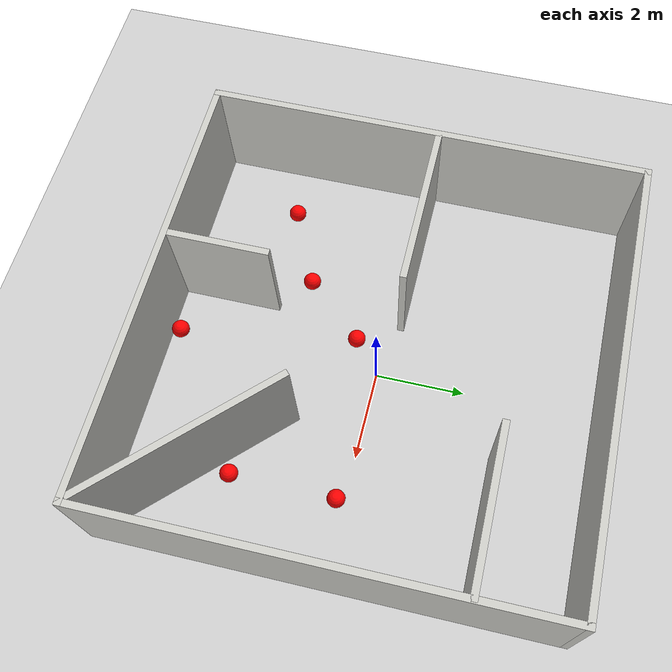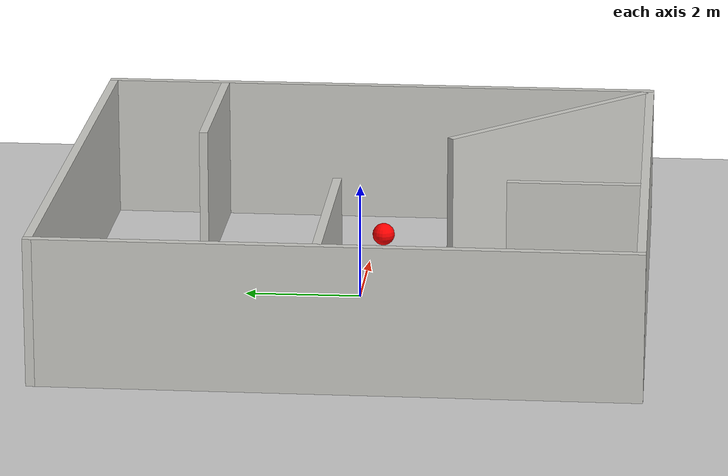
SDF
<sdf version="1.6">
 <world name="default">
  <model name="ground_plane">
   <static>1</static>
   <link name="link">
    <collision name="collision">
     <geometry><plane><normal>0 0 1</normal><size>100 100</size></plane></geometry>
     <surface><friction><ode><mu>100</mu><mu2>50</mu2></ode></friction></surface>
    </collision>
    <visual name="visual">
     <cast_shadows>0</cast_shadows>
     <geometry><plane><normal>0 0 1</normal><size>100 100</size></plane></geometry>
     <material>
      <script><uri>file://media/materials/scripts/gazebo.material</uri><name>Gazebo/Grey</name></script>
     </material>
    </visual>
   </link>
  </model>
  <model name="redball_0">
   <link name="link">
    <pose>0 0 0.2 0 -0 0</pose>
    <inertial>
     <mass>1</mass>
     <inertia><ixx>0.1</ixx><ixy>0</ixy><ixz>0</ixz><iyy>0.1</iyy><iyz>0</iyz><izz>0.1</izz></inertia>
    </inertial>
    <visual name="visual">
     <geometry><sphere><radius>0.2</radius></sphere></geometry>
     <material>
      <script><name>Gazebo/Grey</name><uri>file://media/materials/scripts/gazebo.material</uri></script>
      <ambient>1 0 0 1</ambient>
      <diffuse>1 0 0 1</diffuse>
      <specular>1 0 0 1</specular>
      <emissive>0 0 0 1</emissive>
      <shader type="vertex"><normal_map>__default__</normal_map></shader>
     </material>
    </visual>
    <collision name="collision">
     <geometry><sphere><radius>0.2</radius></sphere></geometry>
     <surface>
      <friction>
       <ode><mu>1</mu><mu2>1</mu2><fdir1>0 0 0</fdir1><slip1>0</slip1><slip2>0</slip2></ode>
       <torsional>
        <coefficient>1</coefficient>
        <patch_radius>0</patch_radius>
        <surface_radius>0</surface_radius>
        <use_patch_radius>1</use_patch_radius>
        <ode><slip>0</slip></ode>
       </torsional>
      </friction>
      <bounce><restitution_coefficient>0</restitution_coefficient><threshold>1e+06</threshold></bounce>
      <contact>
       <collide_without_contact>0</collide_without_contact>
       <collide_without_contact_bitmask>1</collide_without_contact_bitmask>
       <collide_bitmask>1</collide_bitmask>
       <ode>
        <soft_cfm>0</soft_cfm>
        <soft_erp>0.2</soft_erp>
        <kp>1e+13</kp>
        <kd>1</kd>
        <max_vel>0.01</max_vel>
        <min_depth>0</min_depth>
       </ode>
       <bullet>
        <split_impulse>1</split_impulse>
        <split_impulse_penetration_threshold>-0.01</split_impulse_penetration_threshold>
        <soft_cfm>0</soft_cfm>
        <soft_erp>0.2</soft_erp>
        <kp>1e+13</kp>
        <kd>1</kd>
       </bullet>
      </contact>
     </surface>
    </collision>
   </link>
   <static>0</static>
   <pose>-0.044672 -4.61825 7.4e-05 -0.02714 0 0</pose>
  </model>
  <model name="redball_3">
   <link name="link">
    <pose>0 0 0.2 0 -0 0</pose>
    <inertial>
     <mass>1</mass>
     <inertia><ixx>0.1</ixx><ixy>0</ixy><ixz>0</ixz><iyy>0.1</iyy><iyz>0</iyz><izz>0.1</izz></inertia>
    </inertial>
    <visual name="visual">
     <geometry><sphere><radius>0.2</radius></sphere></geometry>
     <material>
      <script><name>Gazebo/Grey</name><uri>file://media/materials/scripts/gazebo.material</uri></script>
      <ambient>1 0 0 1</ambient>
      <diffuse>1 0 0 1</diffuse>
      <specular>1 0 0 1</specular>
      <emissive>0 0 0 1</emissive>
      <shader type="vertex"><normal_map>__default__</normal_map></shader>
     </material>
    </visual>
    <collision name="collision">
     <geometry><sphere><radius>0.2</radius></sphere></geometry>
     <surface>
      <friction>
       <ode><mu>1</mu><mu2>1</mu2><fdir1>0 0 0</fdir1><slip1>0</slip1><slip2>0</slip2></ode>
       <torsional>
        <coefficient>1</coefficient>
        <patch_radius>0</patch_radius>
        <surface_radius>0</surface_radius>
        <use_patch_radius>1</use_patch_radius>
        <ode><slip>0</slip></ode>
       </torsional>
      </friction>
      <bounce><restitution_coefficient>0</restitution_coefficient><threshold>1e+06</threshold></bounce>
      <contact>
       <collide_without_contact>0</collide_without_contact>
       <collide_without_contact_bitmask>1</collide_without_contact_bitmask>
       <collide_bitmask>1</collide_bitmask>
       <ode>
        <soft_cfm>0</soft_cfm>
        <soft_erp>0.2</soft_erp>
        <kp>1e+13</kp>
        <kd>1</kd>
        <max_vel>0.01</max_vel>
        <min_depth>0</min_depth>
       </ode>
       <bullet>
        <split_impulse>1</split_impulse>
        <split_impulse_penetration_threshold>-0.01</split_impulse_penetration_threshold>
        <soft_cfm>0</soft_cfm>
        <soft_erp>0.2</soft_erp>
        <kp>1e+13</kp>
        <kd>1</kd>
       </bullet>
      </contact>
     </surface>
    </collision>
   </link>
   <static>0</static>
   <pose>-1.92733 -1.98789 0 0 -0 0</pose>
  </model>
  <model name="4wall">
   <pose>-0.096996 0.031753 0 0 -0 0</pose>
   <link name="Wall_34">
    <collision name="Wall_34_Collision">
     <geometry><box><size>10 0.15 2.5</size></box></geometry>
     <pose>0 0 1.25 0 -0 0</pose>
    </collision>
    <visual name="Wall_34_Visual">
     <pose>0 0 1.25 0 -0 0</pose>
     <geometry><box><size>10 0.15 2.5</size></box></geometry>
     <material>
      <script><uri>file://media/materials/scripts/gazebo.material</uri><name>Gazebo/CeilingTiled</name></script>
      <ambient>1 1 1 1</ambient>
     </material>
     <meta><layer>0</layer></meta>
    </visual>
    <pose>0 4.925 0 0 -0 3.14159</pose>
   </link>
   <link name="Wall_36">
    <collision name="Wall_36_Collision">
     <geometry><box><size>10 0.15 2.5</size></box></geometry>
     <pose>0 0 1.25 0 -0 0</pose>
    </collision>
    <visual name="Wall_36_Visual">
     <pose>0 0 1.25 0 -0 0</pose>
     <geometry><box><size>10 0.15 2.5</size></box></geometry>
     <material>
      <script><uri>file://media/materials/scripts/gazebo.material</uri><name>Gazebo/CeilingTiled</name></script>
      <ambient>1 1 1 1</ambient>
     </material>
     <meta><layer>0</layer></meta>
    </visual>
    <pose>-4.925 0 0 0 0 -1.5708</pose>
   </link>
   <link name="Wall_37">
    <collision name="Wall_37_Collision">
     <geometry><box><size>10 0.15 2.5</size></box></geometry>
     <pose>0 0 1.25 0 -0 0</pose>
    </collision>
    <visual name="Wall_37_Visual">
     <pose>0 0 1.25 0 -0 0</pose>
     <geometry><box><size>10 0.15 2.5</size></box></geometry>
     <material>
      <script><uri>file://media/materials/scripts/gazebo.material</uri><name>Gazebo/CeilingTiled</name></script>
      <ambient>1 1 1 1</ambient>
     </material>
     <meta><layer>0</layer></meta>
    </visual>
    <pose>0 -4.925 0 0 -0 0</pose>
   </link>
   <link name="Wall_38">
    <collision name="Wall_38_Collision">
     <geometry><box><size>10 0.15 2.5</size></box></geometry>
     <pose>0 0 1.25 0 -0 0</pose>
    </collision>
    <visual name="Wall_38_Visual">
     <pose>0 0 1.25 0 -0 0</pose>
     <geometry><box><size>10 0.15 2.5</size></box></geometry>
     <material>
      <script><uri>file://media/materials/scripts/gazebo.material</uri><name>Gazebo/CeilingTiled</name></script>
      <ambient>1 1 1 1</ambient>
     </material>
     <meta><layer>0</layer></meta>
    </visual>
    <pose>4.925 0 0 0 -0 1.5708</pose>
   </link>
   <static>1</static>
  </model>
  <model name="redball_2_clone">
   <link name="link">
    <pose>0 0 0.2 0 -0 0</pose>
    <inertial>
     <mass>1</mass>
     <inertia><ixx>0.1</ixx><ixy>0</ixy><ixz>0</ixz><iyy>0.1</iyy><iyz>0</iyz><izz>0.1</izz></inertia>
    </inertial>
    <visual name="visual">
     <geometry><sphere><radius>0.2</radius></sphere></geometry>
     <material>
      <script><name>Gazebo/Grey</name><uri>file://media/materials/scripts/gazebo.material</uri></script>
      <ambient>1 0 0 1</ambient>
      <diffuse>1 0 0 1</diffuse>
      <specular>1 0 0 1</specular>
      <emissive>0 0 0 1</emissive>
      <shader type="vertex"><normal_map>__default__</normal_map></shader>
     </material>
    </visual>
    <collision name="collision">
     <geometry><sphere><radius>0.2</radius></sphere></geometry>
     <surface>
      <friction>
       <ode><mu>1</mu><mu2>1</mu2><fdir1>0 0 0</fdir1><slip1>0</slip1><slip2>0</slip2></ode>
       <torsional>
        <coefficient>1</coefficient>
        <patch_radius>0</patch_radius>
        <surface_radius>0</surface_radius>
        <use_patch_radius>1</use_patch_radius>
        <ode><slip>0</slip></ode>
       </torsional>
      </friction>
      <bounce><restitution_coefficient>0</restitution_coefficient><threshold>1e+06</threshold></bounce>
      <contact>
       <collide_without_contact>0</collide_without_contact>
       <collide_without_contact_bitmask>1</collide_without_contact_bitmask>
       <collide_bitmask>1</collide_bitmask>
       <ode>
        <soft_cfm>0</soft_cfm>
        <soft_erp>0.2</soft_erp>
        <kp>1e+13</kp>
        <kd>1</kd>
        <max_vel>0.01</max_vel>
        <min_depth>0</min_depth>
       </ode>
       <bullet>
        <split_impulse>1</split_impulse>
        <split_impulse_penetration_threshold>-0.01</split_impulse_penetration_threshold>
        <soft_cfm>0</soft_cfm>
        <soft_erp>0.2</soft_erp>
        <kp>1e+13</kp>
        <kd>1</kd>
       </bullet>
      </contact>
     </surface>
    </collision>
   </link>
   <static>0</static>
   <pose>1.33761 -2.52697 0 0 -0 0</pose>
  </model>
  <model name="redball_2_clone_0">
   <link name="link">
    <pose>0 0 0.2 0 -0 0</pose>
    <inertial>
     <mass>1</mass>
     <inertia><ixx>0.1</ixx><ixy>0</ixy><ixz>0</ixz><iyy>0.1</iyy><iyz>0</iyz><izz>0.1</izz></inertia>
    </inertial>
    <visual name="visual">
     <geometry><sphere><radius>0.2</radius></sphere></geometry>
     <material>
      <script><name>Gazebo/Grey</name><uri>file://media/materials/scripts/gazebo.material</uri></script>
      <ambient>1 0 0 1</ambient>
      <diffuse>1 0 0 1</diffuse>
      <specular>1 0 0 1</specular>
      <emissive>0 0 0 1</emissive>
      <shader type="vertex"><normal_map>__default__</normal_map></shader>
     </material>
    </visual>
    <collision name="collision">
     <geometry><sphere><radius>0.2</radius></sphere></geometry>
     <surface>
      <friction>
       <ode><mu>1</mu><mu2>1</mu2><fdir1>0 0 0</fdir1><slip1>0</slip1><slip2>0</slip2></ode>
       <torsional>
        <coefficient>1</coefficient>
        <patch_radius>0</patch_radius>
        <surface_radius>0</surface_radius>
        <use_patch_radius>1</use_patch_radius>
        <ode><slip>0</slip></ode>
       </torsional>
      </friction>
      <bounce><restitution_coefficient>0</restitution_coefficient><threshold>1e+06</threshold></bounce>
      <contact>
       <collide_without_contact>0</collide_without_contact>
       <collide_without_contact_bitmask>1</collide_without_contact_bitmask>
       <collide_bitmask>1</collide_bitmask>
       <ode>
        <soft_cfm>0</soft_cfm>
        <soft_erp>0.2</soft_erp>
        <kp>1e+13</kp>
        <kd>1</kd>
        <max_vel>0.01</max_vel>
        <min_depth>0</min_depth>
       </ode>
       <bullet>
        <split_impulse>1</split_impulse>
        <split_impulse_penetration_threshold>-0.01</split_impulse_penetration_threshold>
        <soft_cfm>0</soft_cfm>
        <soft_erp>0.2</soft_erp>
        <kp>1e+13</kp>
        <kd>1</kd>
       </bullet>
      </contact>
     </surface>
    </collision>
   </link>
   <static>0</static>
   <pose>3.02203 -0.166377 0 0 -0 0</pose>
  </model>
  <model name="redball_2_clone_1">
   <link name="link">
    <pose>0 0 0.2 0 -0 0</pose>
    <inertial>
     <mass>1</mass>
     <inertia><ixx>0.1</ixx><ixy>0</ixy><ixz>0</ixz><iyy>0.1</iyy><iyz>0</iyz><izz>0.1</izz></inertia>
    </inertial>
    <visual name="visual">
     <geometry><sphere><radius>0.2</radius></sphere></geometry>
     <material>
      <script><name>Gazebo/Grey</name><uri>file://media/materials/scripts/gazebo.material</uri></script>
      <ambient>1 0 0 1</ambient>
      <diffuse>1 0 0 1</diffuse>
      <specular>1 0 0 1</specular>
      <emissive>0 0 0 1</emissive>
      <shader type="vertex"><normal_map>__default__</normal_map></shader>
     </material>
    </visual>
    <collision name="collision">
     <geometry><sphere><radius>0.2</radius></sphere></geometry>
     <surface>
      <friction>
       <ode><mu>1</mu><mu2>1</mu2><fdir1>0 0 0</fdir1><slip1>0</slip1><slip2>0</slip2></ode>
       <torsional>
        <coefficient>1</coefficient>
        <patch_radius>0</patch_radius>
        <surface_radius>0</surface_radius>
        <use_patch_radius>1</use_patch_radius>
        <ode><slip>0</slip></ode>
       </torsional>
      </friction>
      <bounce><restitution_coefficient>0</restitution_coefficient><threshold>1e+06</threshold></bounce>
      <contact>
       <collide_without_contact>0</collide_without_contact>
       <collide_without_contact_bitmask>1</collide_without_contact_bitmask>
       <collide_bitmask>1</collide_bitmask>
       <ode>
        <soft_cfm>0</soft_cfm>
        <soft_erp>0.2</soft_erp>
        <kp>1e+13</kp>
        <kd>1</kd>
        <max_vel>0.01</max_vel>
        <min_depth>0</min_depth>
       </ode>
       <bullet>
        <split_impulse>1</split_impulse>
        <split_impulse_penetration_threshold>-0.01</split_impulse_penetration_threshold>
        <soft_cfm>0</soft_cfm>
        <soft_erp>0.2</soft_erp>
        <kp>1e+13</kp>
        <kd>1</kd>
       </bullet>
      </contact>
     </surface>
    </collision>
   </link>
   <static>0</static>
   <pose>3 -2.53113 0 0 -0 0</pose>
  </model>
  <model name="redball_2_clone_5">
   <link name="link">
    <pose>0 0 0.2 0 -0 0</pose>
    <inertial>
     <mass>1</mass>
     <inertia><ixx>0.1</ixx><ixy>0</ixy><ixz>0</ixz><iyy>0.1</iyy><iyz>0</iyz><izz>0.1</izz></inertia>
    </inertial>
    <visual name="visual">
     <geometry><sphere><radius>0.2</radius></sphere></geometry>
     <material>
      <script><name>Gazebo/Grey</name><uri>file://media/materials/scripts/gazebo.material</uri></script>
      <ambient>1 0 0 1</ambient>
      <diffuse>1 0 0 1</diffuse>
      <specular>1 0 0 1</specular>
      <emissive>0 0 0 1</emissive>
      <shader type="vertex"><normal_map>__default__</normal_map></shader>
     </material>
    </visual>
    <collision name="collision">
     <geometry><sphere><radius>0.2</radius></sphere></geometry>
     <surface>
      <friction>
       <ode><mu>1</mu><mu2>1</mu2><fdir1>0 0 0</fdir1><slip1>0</slip1><slip2>0</slip2></ode>
       <torsional>
        <coefficient>1</coefficient>
        <patch_radius>0</patch_radius>
        <surface_radius>0</surface_radius>
        <use_patch_radius>1</use_patch_radius>
        <ode><slip>0</slip></ode>
       </torsional>
      </friction>
      <bounce><restitution_coefficient>0</restitution_coefficient><threshold>1e+06</threshold></bounce>
      <contact>
       <collide_without_contact>0</collide_without_contact>
       <collide_without_contact_bitmask>1</collide_without_contact_bitmask>
       <collide_bitmask>1</collide_bitmask>
       <ode>
        <soft_cfm>0</soft_cfm>
        <soft_erp>0.2</soft_erp>
        <kp>1e+13</kp>
        <kd>1</kd>
        <max_vel>0.01</max_vel>
        <min_depth>0</min_depth>
       </ode>
       <bullet>
        <split_impulse>1</split_impulse>
        <split_impulse_penetration_threshold>-0.01</split_impulse_penetration_threshold>
        <soft_cfm>0</soft_cfm>
        <soft_erp>0.2</soft_erp>
        <kp>1e+13</kp>
        <kd>1</kd>
       </bullet>
      </contact>
     </surface>
    </collision>
   </link>
   <static>0</static>
   <pose>-3.68777 -2.81908 0 0 -0 0</pose>
  </model>
  <model name="redball_2_clone_6">
   <link name="link">
    <pose>0 0 0.2 0 -0 0</pose>
    <inertial>
     <mass>1</mass>
     <inertia><ixx>0.1</ixx><ixy>0</ixy><ixz>0</ixz><iyy>0.1</iyy><iyz>0</iyz><izz>0.1</izz></inertia>
    </inertial>
    <visual name="visual">
     <geometry><sphere><radius>0.2</radius></sphere></geometry>
     <material>
      <script><name>Gazebo/Grey</name><uri>file://media/materials/scripts/gazebo.material</uri></script>
      <ambient>1 0 0 1</ambient>
      <diffuse>1 0 0 1</diffuse>
      <specular>1 0 0 1</specular>
      <emissive>0 0 0 1</emissive>
      <shader type="vertex"><normal_map>__default__</normal_map></shader>
     </material>
    </visual>
    <collision name="collision">
     <geometry><sphere><radius>0.2</radius></sphere></geometry>
     <surface>
      <friction>
       <ode><mu>1</mu><mu2>1</mu2><fdir1>0 0 0</fdir1><slip1>0</slip1><slip2>0</slip2></ode>
       <torsional>
        <coefficient>1</coefficient>
        <patch_radius>0</patch_radius>
        <surface_radius>0</surface_radius>
        <use_patch_radius>1</use_patch_radius>
        <ode><slip>0</slip></ode>
       </torsional>
      </friction>
      <bounce><restitution_coefficient>0</restitution_coefficient><threshold>1e+06</threshold></bounce>
      <contact>
       <collide_without_contact>0</collide_without_contact>
       <collide_without_contact_bitmask>1</collide_without_contact_bitmask>
       <collide_bitmask>1</collide_bitmask>
       <ode>
        <soft_cfm>0</soft_cfm>
        <soft_erp>0.2</soft_erp>
        <kp>1e+13</kp>
        <kd>1</kd>
        <max_vel>0.01</max_vel>
        <min_depth>0</min_depth>
       </ode>
       <bullet>
        <split_impulse>1</split_impulse>
        <split_impulse_penetration_threshold>-0.01</split_impulse_penetration_threshold>
        <soft_cfm>0</soft_cfm>
        <soft_erp>0.2</soft_erp>
        <kp>1e+13</kp>
        <kd>1</kd>
       </bullet>
      </contact>
     </surface>
    </collision>
   </link>
   <static>0</static>
   <pose>-0.707132 -0.6194 0 0 -0 0</pose>
  </model>
  <model name="Untitled1">
   <pose>-0.051434 -0.954798 0 0 -0 0</pose>
   <link name="Wall_47">
    <collision name="Wall_47_Collision">
     <geometry><box><size>3.5 0.15 2.5</size></box></geometry>
     <pose>0 0 1.25 0 -0 0</pose>
    </collision>
    <visual name="Wall_47_Visual">
     <pose>0 0 1.25 0 -0 0</pose>
     <geometry><box><size>3.5 0.15 2.5</size></box></geometry>
     <material>
      <script><uri>file://media/materials/scripts/gazebo.material</uri><name>Gazebo/CeilingTiled</name></script>
      <ambient>1 1 1 1</ambient>
     </material>
     <meta><layer>0</layer></meta>
    </visual>
    <pose>3.17656 3.84437 0 0 -0 0</pose>
   </link>
   <link name="Wall_51">
    <collision name="Wall_51_Collision">
     <geometry><box><size>2.25 0.15 2.5</size></box></geometry>
     <pose>0 0 1.25 0 -0 0</pose>
    </collision>
    <visual name="Wall_51_Visual">
     <pose>0 0 1.25 0 -0 0</pose>
     <geometry><box><size>2.25 0.15 2.5</size></box></geometry>
     <material>
      <script><uri>file://media/materials/scripts/gazebo.material</uri><name>Gazebo/CeilingTiled</name></script>
      <ambient>1 1 1 1</ambient>
     </material>
     <meta><layer>0</layer></meta>
    </visual>
    <pose>-1.1292 -2.74246 0 0 0 -1.5708</pose>
   </link>
   <link name="Wall_53">
    <collision name="Wall_53_Collision">
     <geometry><box><size>4.75 0.15 2.5</size></box></geometry>
     <pose>0 0 1.25 0 -0 0</pose>
    </collision>
    <visual name="Wall_53_Visual">
     <pose>0 0 1.25 0 -0 0</pose>
     <geometry><box><size>4.75 0.15 2.5</size></box></geometry>
     <material>
      <script><uri>file://media/materials/scripts/gazebo.material</uri><name>Gazebo/CeilingTiled</name></script>
      <ambient>1 1 1 1</ambient>
     </material>
     <meta><layer>0</layer></meta>
    </visual>
    <pose>3.09732 -2.18696 0 0 0 -0.785398</pose>
   </link>
   <link name="Wall_55">
    <collision name="Wall_55_Collision">
     <geometry><box><size>3.75 0.15 2.5</size></box></geometry>
     <pose>0 0 1.25 0 -0 0</pose>
    </collision>
    <visual name="Wall_55_Visual">
     <pose>0 0 1.25 0 -0 0</pose>
     <geometry><box><size>3.75 0.15 2.5</size></box></geometry>
     <material>
      <script><uri>file://media/materials/scripts/gazebo.material</uri><name>Gazebo/CeilingTiled</name></script>
      <ambient>1 1 1 1</ambient>
     </material>
     <meta><layer>0</layer></meta>
    </visual>
    <pose>-3.05156 1.24421 0 0 -0 3.14159</pose>
   </link>
   <static>1</static>
  </model>
 </world>
</sdf>
